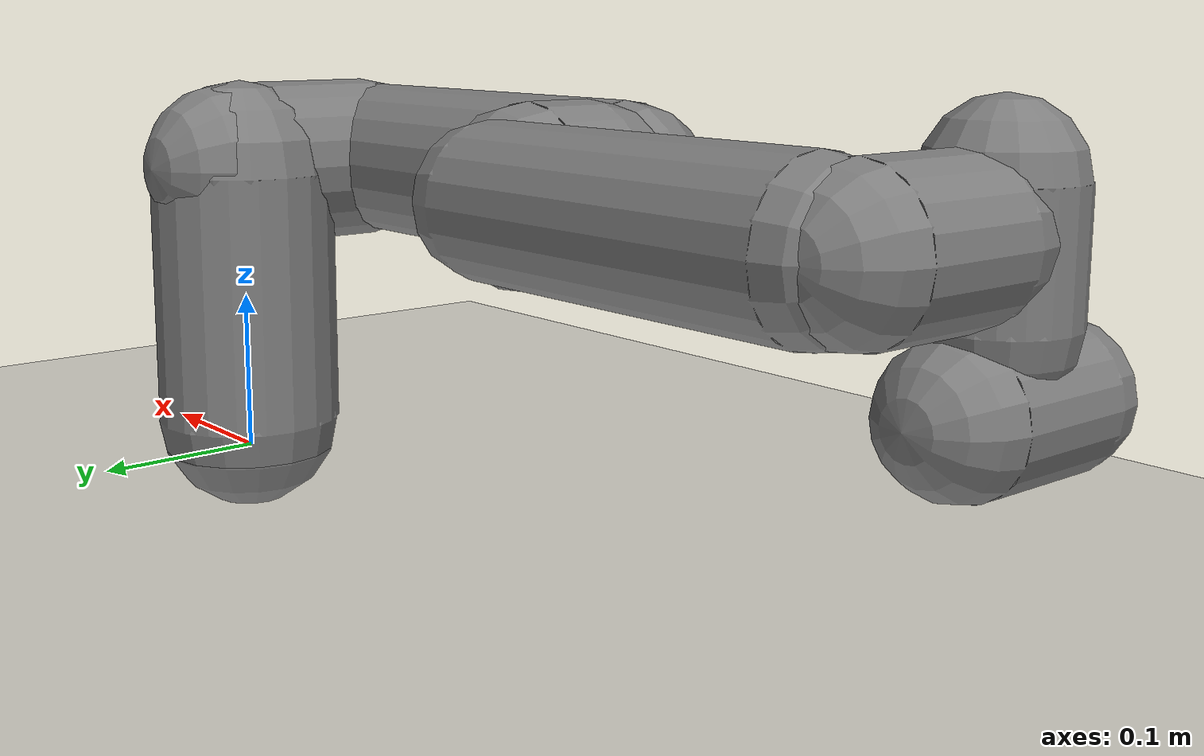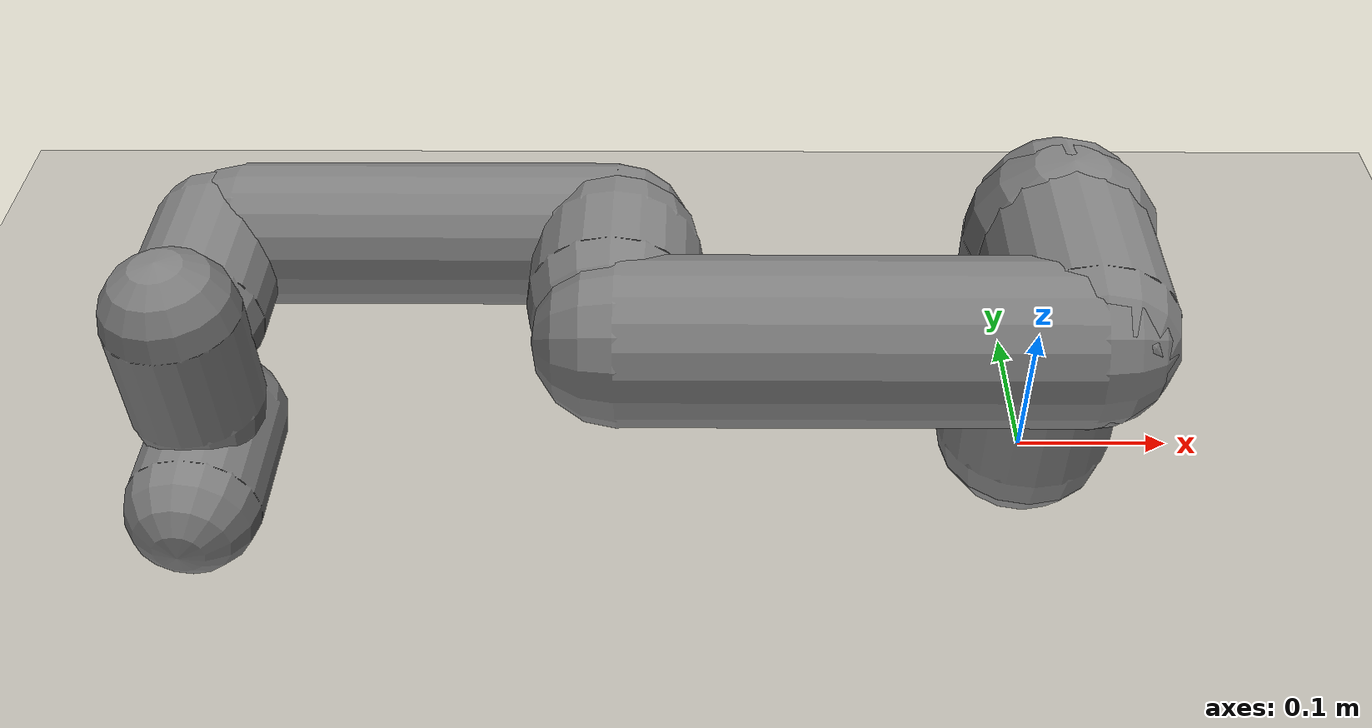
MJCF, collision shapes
<mujoco model="SMR-i3-URDF-000">
  <compiler angle="radian" meshdir="../meshes" autolimits="true" />
  <option integrator="implicitfast" />
  <default>
    <default class="smr">
      <material specular="0.5" shininess="0.25" />
      <joint armature="0.00001" />
      <!-- CSP: 位置 PD 伺服执行器（actuator group=0；与 geom group=2/3 是不同字段，无冲突） -->
      <default class="smr/csp">
        <general gaintype="fixed" biastype="affine" ctrlrange="-6.2831 6.2831" gainprm="2000" biasprm="0 -2000 -400" forcerange="-150 150" group="0" />
      </default>
      <!-- CST: 直接力矩注入执行器（actuator group=1） -->
      <default class="smr/cst">
        <motor ctrlrange="-150 150" forcerange="-150 150" group="1" />
      </default>
      <default class="visual">
        <geom type="mesh" contype="0" conaffinity="0" group="2" />
      </default>
      <default class="collision">
        <geom type="capsule" group="3" rgba="0.5 0.5 0.5 0.9" />
      </default>
      <site size="0.001" rgba="0.5 0.5 0.5 0.3" group="4" />
    </default>
  </default>
  <asset>
    <material class="smr" name="linkblue" rgba="0.792157 0.819608 0.933333 1" />
    <material class="smr" name="flangegray" rgba="0.898039 0.917647 0.929412 1" />
    <mesh name="base_link" file="base_link.STL" />
    <mesh name="shoulder_link" file="shoulder_link.STL" />
    <mesh name="upper_arm_link" file="upper_arm_link.STL" />
    <mesh name="lower_arm_link" file="lower_arm_link.STL" />
    <mesh name="proximal_wrist_link" file="proximal_wrist_link.STL" />
    <mesh name="distal_wrist_link" file="distal_wrist_link.STL" />
    <mesh name="flange_link" file="flange_link.STL" />
  </asset>
  <worldbody>
    <light name="top" pos="0 0 2" dir="0 0 -1" diffuse="0.5 0.5 0.5" />
    <light name="spotlight" mode="targetbodycom" target="distal_wrist_link" pos="0 -1 2" diffuse="0.8 0.8 0.8" />
    <geom name="floor" type="plane" size="2 2 0.05" rgba="0.5 0.5 0.5 1" friction="1 0.005 0.0001" />
    <body name="base_link" childclass="smr">
      <inertial pos="0.0012271 3.5719e-05 0.067242" quat="0.999238 -0.00447993 0.038768 -0.000376063" mass="2.3653" diaginertia="0.00428608 0.00418193 0.0038568" />
      <geom class="visual" mesh="base_link" material="linkblue" />
      <geom class="collision" size="0.058 0.08" pos="0 0 0.10" />
      <body name="shoulder_link" pos="0 0 0.1245">
        <inertial pos="-0.014568 -3.2077e-05 0.055988" quat="0.00414817 0.850649 0.00044744 0.525718" mass="2.1469" diaginertia="0.00301085 0.00282911 0.00240014" />
        <joint name="base_joint" pos="0 0 0" axis="0 0 1" range="-6.28319 6.28319" damping="1.37712" frictionloss="2.12262" />
        <geom class="visual" mesh="shoulder_link" material="linkblue" />
        <geom class="collision" size="0.052 0.05" pos="0 -0.04 0.06" quat="0.707 0.707 0 0" />
        <body name="upper_arm_link" pos="0 -0.0462 0.061" quat="0.707105 0.707108 0 0">
          <inertial pos="-0.1221 2.3317e-06 0.043604" quat="2.5337e-05 0.711378 9.47724e-06 0.70281" mass="1.2763" diaginertia="0.0143619 0.013496 0.00153382" />
          <joint name="shoulder_joint" pos="0 0 0" axis="0 0 1" range="-4.36332 1.22173" damping="1.43903" frictionloss="1.66347" />
          <geom class="visual" mesh="upper_arm_link" material="linkblue" />
          <geom class="collision" size="0.048 0.13" pos="-0.13 0 0.05" quat="0.707 0 0.707 0" />
          <body name="lower_arm_link" pos="-0.263 0 0">
            <inertial pos="-0.070306 0.00048901 -0.021154" quat="0.518688 0.481116 0.490256 0.509057" mass="3.1461" diaginertia="0.0134031 0.013257 0.00346841" />
            <joint name="elbow_joint" pos="0 0 0" axis="0 0 1" range="-2.75762 2.75762" damping="1.61981" frictionloss="2.73848" />
            <geom class="visual" mesh="lower_arm_link" material="linkblue" />
            <geom class="collision" size="0.042 0.11" pos="-0.11 0 -0.043" quat="0.707 0 0.707 0" />
            <geom class="collision" size="0.05 0.02" pos="0.00 0.00 0.00" />
            <body name="proximal_wrist_link" pos="-0.236 0 0.0158">
              <inertial pos="8.7148e-05 -0.0025009 0.040305" quat="0.389377 0.590235 0.39591 0.585887" mass="0.7728" diaginertia="0.000529708 0.000365893 0.000356919" />
              <joint name="wrist1_joint" pos="0 0 0" axis="0 0 1" range="-4.71239 1.5708" damping="0.22439" frictionloss="0.50985" />
              <geom class="visual" mesh="proximal_wrist_link" material="linkblue" />
              <geom class="collision" size="0.04 0.035" pos="0 0 -0.02" />
              <body name="distal_wrist_link" pos="0 -0.038 0.041" quat="0.707105 0.707108 0 0">
                <inertial pos="-7.8317e-05 0.0024461 0.039842" quat="0.587018 0.394352 0.581325 0.402441" mass="0.7827" diaginertia="0.000532619 0.000368023 0.000354807" />
                <joint name="wrist2_joint" pos="0 0 0" axis="0 0 1" range="-2.26893 2.26893" damping="0.19644" frictionloss="0.51623" />
                <geom class="visual" mesh="distal_wrist_link" material="linkblue" />
                <geom class="collision" size="0.038 0.032" pos="0 0.0 -0.03" />
                <body name="flange_link" pos="0 0.0385 0.041" quat="0.707105 -0.707108 0 0">
                  <inertial pos="0.00029338 -0.00022112 0.01719" quat="0.498157 0.504719 -0.495798 0.501282" mass="0.17609" diaginertia="0.000118562 6.42934e-05 6.29627e-05" />
                  <joint name="wrist3_joint" pos="0 0 0" axis="0 0 1" range="-6.28319 6.28319" damping="0.20446" frictionloss="0.56759" />
                  <geom class="visual" mesh="flange_link" material="flangegray" />
                  <geom class="collision" size="0.038 0.035" pos="0 0 -0.028" quat="1 0 0 0" />
                  <site name="attachment_site" pos="0 0 0.0315" />
                  <body name="payload" pos="0 0 0.0315" quat="1 0 0 0">
                    <inertial pos="0 0 0" mass="1e-6"
                              diaginertia="1e-9 1e-9 1e-9" />
                  </body>
                </body>
              </body>
            </body>
          </body>
        </body>
      </body>
    </body>
  </worldbody>
  <contact>
    <exclude body1="base_link" body2="shoulder_link" />
    <exclude body1="base_link" body2="upper_arm_link" />
  </contact>
  <actuator>
    <!-- CSP 组（位置伺服）：与原行为完全一致 -->
    <general class="smr/csp" name="csp_base"     joint="base_joint" />
    <general class="smr/csp" name="csp_shoulder" joint="shoulder_joint" />
    <general class="smr/csp" name="csp_elbow"    joint="elbow_joint" />
    <general class="smr/csp" name="csp_wrist1"  joint="wrist1_joint" />
    <general class="smr/csp" name="csp_wrist2"  joint="wrist2_joint" />
    <general class="smr/csp" name="csp_wrist3"  joint="wrist3_joint" />
    <!-- CST 组（直接力矩注入）：FreeDrive 真力矩仿真路径 -->
    <motor   class="smr/cst" name="cst_base"     joint="base_joint" />
    <motor   class="smr/cst" name="cst_shoulder" joint="shoulder_joint" />
    <motor   class="smr/cst" name="cst_elbow"    joint="elbow_joint" />
    <motor   class="smr/cst" name="cst_wrist1"  joint="wrist1_joint" />
    <motor   class="smr/cst" name="cst_wrist2"  joint="wrist2_joint" />
    <motor   class="smr/cst" name="cst_wrist3"  joint="wrist3_joint" />
  </actuator>
  <keyframe>
    <!-- ctrl 12 维：前 6 个 CSP（关节角，单位 rad），后 6 个 CST（力矩，单位 N·m）；
         home 位置下 CST 力矩为 0，CSP 关节角全 0 -->
    <key name="home" qpos="0 0 0 0 0 0" ctrl="0 0 0 0 0 0  0 0 0 0 0 0" />
  </keyframe>
</mujoco>
